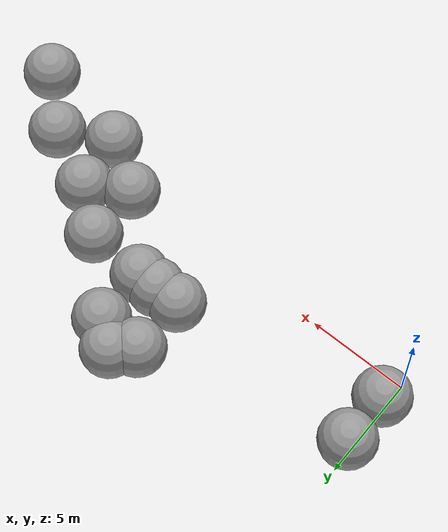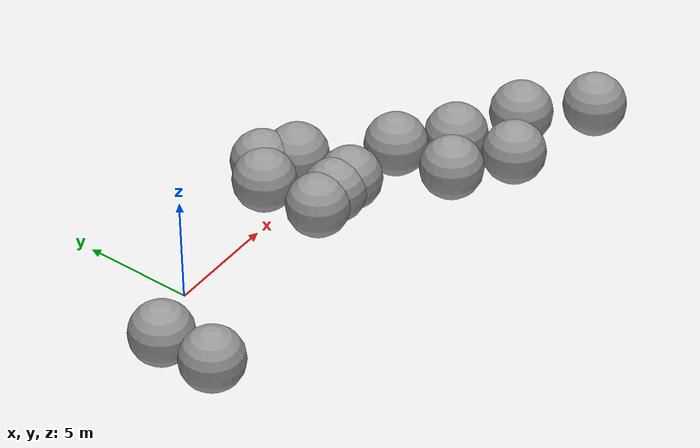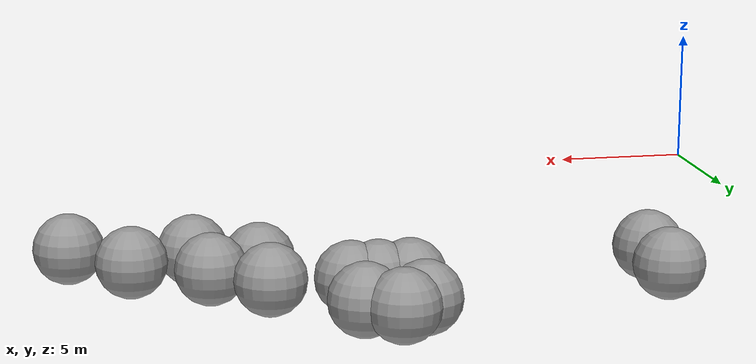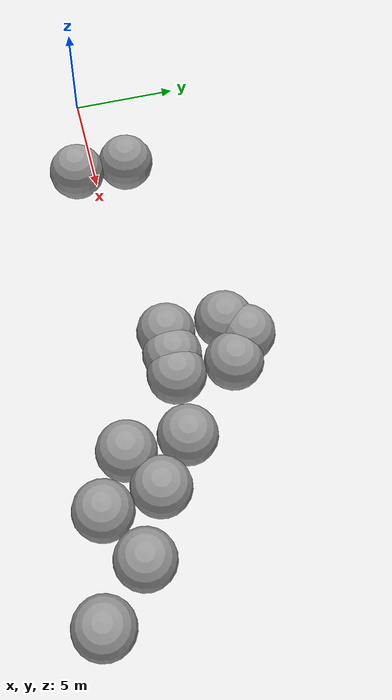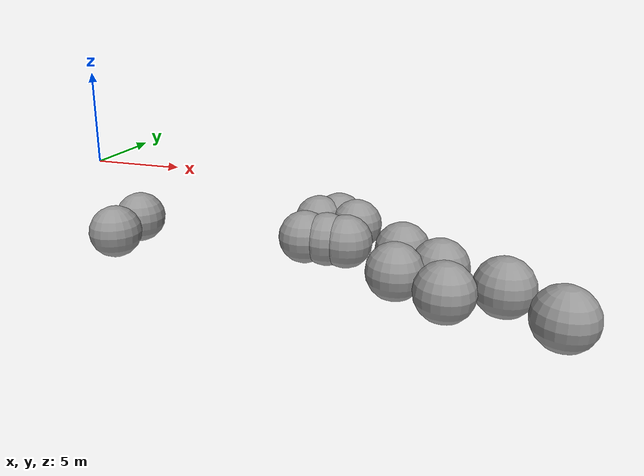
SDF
<sdf version="1.7">
 <world name="default">
  <model name="fly_spawn_12">
   <link name="link_0">
    <inertial>
     <mass>1</mass>
     <inertia><ixx>0.1</ixx><ixy>0</ixy><ixz>0</ixz><iyy>0.1</iyy><iyz>0</iyz><izz>0.1</izz></inertia>
     <pose>0 0 -2.0 0 -0 0</pose>
    </inertial>
    <visual name="visual">
     <pose>0 0 -2.0 0 -0 0</pose>
     <geometry><sphere><radius>1.5</radius></sphere></geometry>
     <material>
      <lighting>1</lighting>
      <script><uri>file://media/materials/scripts/gazebo.material</uri><name>Gazebo/Grey</name></script>
      <shader type="pixel"><normal_map>__default__</normal_map></shader>
      <ambient>0.3 0.3 0.3 1</ambient>
      <diffuse>0.7 0.7 0.7 1</diffuse>
      <specular>0.01 0.01 0.01 1</specular>
      <emissive>0 0 0 1</emissive>
     </material>
    </visual>
    <collision name="collision">
     <pose>0 0 -2.0 0 -0 0</pose>
     <geometry><sphere><radius>1.5</radius></sphere></geometry>
     <surface>
      <friction>
       <ode><mu>1</mu><mu2>1</mu2><fdir1>0 0 0</fdir1><slip1>0</slip1><slip2>0</slip2></ode>
       <torsional>
        <coefficient>1</coefficient>
        <patch_radius>0</patch_radius>
        <surface_radius>0</surface_radius>
        <use_patch_radius>1</use_patch_radius>
        <ode><slip>0</slip></ode>
       </torsional>
      </friction>
      <bounce><restitution_coefficient>0</restitution_coefficient><threshold>1e+06</threshold></bounce>
      <contact>
       <collide_without_contact>0</collide_without_contact>
       <collide_without_contact_bitmask>1</collide_without_contact_bitmask>
       <collide_bitmask>1</collide_bitmask>
       <ode>
        <soft_cfm>0</soft_cfm>
        <soft_erp>0.2</soft_erp>
        <kp>1e+13</kp>
        <kd>1</kd>
        <max_vel>0.01</max_vel>
        <min_depth>0</min_depth>
       </ode>
       <bullet>
        <split_impulse>1</split_impulse>
        <split_impulse_penetration_threshold>-0.01</split_impulse_penetration_threshold>
        <soft_cfm>0</soft_cfm>
        <soft_erp>0.2</soft_erp>
        <kp>1e+13</kp>
        <kd>1</kd>
       </bullet>
      </contact>
     </surface>
    </collision>
   </link>
   <static>1</static>
   <pose>0.988309 2.21728 -2.0 0 -0 0</pose>
  </model>
  <model name="fly_spawn_13">
   <link name="link_0">
    <inertial>
     <mass>1</mass>
     <inertia><ixx>0.1</ixx><ixy>0</ixy><ixz>0</ixz><iyy>0.1</iyy><iyz>0</iyz><izz>0.1</izz></inertia>
     <pose>0 0 -2.0 0 -0 0</pose>
    </inertial>
    <visual name="visual">
     <pose>0 0 -2.0 0 -0 0</pose>
     <geometry><sphere><radius>1.5</radius></sphere></geometry>
     <material>
      <lighting>1</lighting>
      <script><uri>file://media/materials/scripts/gazebo.material</uri><name>Gazebo/Grey</name></script>
      <shader type="pixel"><normal_map>__default__</normal_map></shader>
      <ambient>0.3 0.3 0.3 1</ambient>
      <diffuse>0.7 0.7 0.7 1</diffuse>
      <specular>0.01 0.01 0.01 1</specular>
      <emissive>0 0 0 1</emissive>
     </material>
    </visual>
    <collision name="collision">
     <pose>0 0 -2.0 0 -0 0</pose>
     <geometry><sphere><radius>1.5</radius></sphere></geometry>
     <surface>
      <friction>
       <ode><mu>1</mu><mu2>1</mu2><fdir1>0 0 0</fdir1><slip1>0</slip1><slip2>0</slip2></ode>
       <torsional>
        <coefficient>1</coefficient>
        <patch_radius>0</patch_radius>
        <surface_radius>0</surface_radius>
        <use_patch_radius>1</use_patch_radius>
        <ode><slip>0</slip></ode>
       </torsional>
      </friction>
      <bounce><restitution_coefficient>0</restitution_coefficient><threshold>1e+06</threshold></bounce>
      <contact>
       <collide_without_contact>0</collide_without_contact>
       <collide_without_contact_bitmask>1</collide_without_contact_bitmask>
       <collide_bitmask>1</collide_bitmask>
       <ode>
        <soft_cfm>0</soft_cfm>
        <soft_erp>0.2</soft_erp>
        <kp>1e+13</kp>
        <kd>1</kd>
        <max_vel>0.01</max_vel>
        <min_depth>0</min_depth>
       </ode>
       <bullet>
        <split_impulse>1</split_impulse>
        <split_impulse_penetration_threshold>-0.01</split_impulse_penetration_threshold>
        <soft_cfm>0</soft_cfm>
        <soft_erp>0.2</soft_erp>
        <kp>1e+13</kp>
        <kd>1</kd>
       </bullet>
      </contact>
     </surface>
    </collision>
   </link>
   <static>1</static>
   <pose>1.00035 -0.534143 -2.0 0 -0 0</pose>
  </model>
  <model name="fly_spawn_14">
   <link name="link_0">
    <inertial>
     <mass>1</mass>
     <inertia><ixx>0.1</ixx><ixy>0</ixy><ixz>0</ixz><iyy>0.1</iyy><iyz>0</iyz><izz>0.1</izz></inertia>
     <pose>0 0 -2.0 0 -0 0</pose>
    </inertial>
    <visual name="visual">
     <pose>0 0 -2.0 0 -0 0</pose>
     <geometry><sphere><radius>1.5</radius></sphere></geometry>
     <material>
      <lighting>1</lighting>
      <script><uri>file://media/materials/scripts/gazebo.material</uri><name>Gazebo/Grey</name></script>
      <shader type="pixel"><normal_map>__default__</normal_map></shader>
      <ambient>0.3 0.3 0.3 1</ambient>
      <diffuse>0.7 0.7 0.7 1</diffuse>
      <specular>0.01 0.01 0.01 1</specular>
      <emissive>0 0 0 1</emissive>
     </material>
    </visual>
    <collision name="collision">
     <pose>0 0 -2.0 0 -0 0</pose>
     <geometry><sphere><radius>1.5</radius></sphere></geometry>
     <surface>
      <friction>
       <ode><mu>1</mu><mu2>1</mu2><fdir1>0 0 0</fdir1><slip1>0</slip1><slip2>0</slip2></ode>
       <torsional>
        <coefficient>1</coefficient>
        <patch_radius>0</patch_radius>
        <surface_radius>0</surface_radius>
        <use_patch_radius>1</use_patch_radius>
        <ode><slip>0</slip></ode>
       </torsional>
      </friction>
      <bounce><restitution_coefficient>0</restitution_coefficient><threshold>1e+06</threshold></bounce>
      <contact>
       <collide_without_contact>0</collide_without_contact>
       <collide_without_contact_bitmask>1</collide_without_contact_bitmask>
       <collide_bitmask>1</collide_bitmask>
       <ode>
        <soft_cfm>0</soft_cfm>
        <soft_erp>0.2</soft_erp>
        <kp>1e+13</kp>
        <kd>1</kd>
        <max_vel>0.01</max_vel>
        <min_depth>0</min_depth>
       </ode>
       <bullet>
        <split_impulse>1</split_impulse>
        <split_impulse_penetration_threshold>-0.01</split_impulse_penetration_threshold>
        <soft_cfm>0</soft_cfm>
        <soft_erp>0.2</soft_erp>
        <kp>1e+13</kp>
        <kd>1</kd>
       </bullet>
      </contact>
     </surface>
    </collision>
   </link>
   <static>1</static>
   <pose>11.7613 1.94217 -2.0 0 -0 0</pose>
  </model>
  <model name="fly_spawn_15">
   <link name="link_0">
    <inertial>
     <mass>1</mass>
     <inertia><ixx>0.1</ixx><ixy>0</ixy><ixz>0</ixz><iyy>0.1</iyy><iyz>0</iyz><izz>0.1</izz></inertia>
     <pose>0 0 -2.0 0 -0 0</pose>
    </inertial>
    <visual name="visual">
     <pose>0 0 -2.0 0 -0 0</pose>
     <geometry><sphere><radius>1.5</radius></sphere></geometry>
     <material>
      <lighting>1</lighting>
      <script><uri>file://media/materials/scripts/gazebo.material</uri><name>Gazebo/Grey</name></script>
      <shader type="pixel"><normal_map>__default__</normal_map></shader>
      <ambient>0.3 0.3 0.3 1</ambient>
      <diffuse>0.7 0.7 0.7 1</diffuse>
      <specular>0.01 0.01 0.01 1</specular>
      <emissive>0 0 0 1</emissive>
     </material>
    </visual>
    <collision name="collision">
     <pose>0 0 -2.0 0 -0 0</pose>
     <geometry><sphere><radius>1.5</radius></sphere></geometry>
     <surface>
      <friction>
       <ode><mu>1</mu><mu2>1</mu2><fdir1>0 0 0</fdir1><slip1>0</slip1><slip2>0</slip2></ode>
       <torsional>
        <coefficient>1</coefficient>
        <patch_radius>0</patch_radius>
        <surface_radius>0</surface_radius>
        <use_patch_radius>1</use_patch_radius>
        <ode><slip>0</slip></ode>
       </torsional>
      </friction>
      <bounce><restitution_coefficient>0</restitution_coefficient><threshold>1e+06</threshold></bounce>
      <contact>
       <collide_without_contact>0</collide_without_contact>
       <collide_without_contact_bitmask>1</collide_without_contact_bitmask>
       <collide_bitmask>1</collide_bitmask>
       <ode>
        <soft_cfm>0</soft_cfm>
        <soft_erp>0.2</soft_erp>
        <kp>1e+13</kp>
        <kd>1</kd>
        <max_vel>0.01</max_vel>
        <min_depth>0</min_depth>
       </ode>
       <bullet>
        <split_impulse>1</split_impulse>
        <split_impulse_penetration_threshold>-0.01</split_impulse_penetration_threshold>
        <soft_cfm>0</soft_cfm>
        <soft_erp>0.2</soft_erp>
        <kp>1e+13</kp>
        <kd>1</kd>
       </bullet>
      </contact>
     </surface>
    </collision>
   </link>
   <static>1</static>
   <pose>11.7411 4.97433 -2.0 0 -0 0</pose>
  </model>
  <model name="fly_spawn_16">
   <link name="link_0">
    <inertial>
     <mass>1</mass>
     <inertia><ixx>0.1</ixx><ixy>0</ixy><ixz>0</ixz><iyy>0.1</iyy><iyz>0</iyz><izz>0.1</izz></inertia>
     <pose>0 0 -2.0 0 -0 0</pose>
    </inertial>
    <visual name="visual">
     <pose>0 0 -2.0 0 -0 0</pose>
     <geometry><sphere><radius>1.5</radius></sphere></geometry>
     <material>
      <lighting>1</lighting>
      <script><uri>file://media/materials/scripts/gazebo.material</uri><name>Gazebo/Grey</name></script>
      <shader type="pixel"><normal_map>__default__</normal_map></shader>
      <ambient>0.3 0.3 0.3 1</ambient>
      <diffuse>0.7 0.7 0.7 1</diffuse>
      <specular>0.01 0.01 0.01 1</specular>
      <emissive>0 0 0 1</emissive>
     </material>
    </visual>
    <collision name="collision">
     <pose>0 0 -2.0 0 -0 0</pose>
     <geometry><sphere><radius>1.5</radius></sphere></geometry>
     <surface>
      <friction>
       <ode><mu>1</mu><mu2>1</mu2><fdir1>0 0 0</fdir1><slip1>0</slip1><slip2>0</slip2></ode>
       <torsional>
        <coefficient>1</coefficient>
        <patch_radius>0</patch_radius>
        <surface_radius>0</surface_radius>
        <use_patch_radius>1</use_patch_radius>
        <ode><slip>0</slip></ode>
       </torsional>
      </friction>
      <bounce><restitution_coefficient>0</restitution_coefficient><threshold>1e+06</threshold></bounce>
      <contact>
       <collide_without_contact>0</collide_without_contact>
       <collide_without_contact_bitmask>1</collide_without_contact_bitmask>
       <collide_bitmask>1</collide_bitmask>
       <ode>
        <soft_cfm>0</soft_cfm>
        <soft_erp>0.2</soft_erp>
        <kp>1e+13</kp>
        <kd>1</kd>
        <max_vel>0.01</max_vel>
        <min_depth>0</min_depth>
       </ode>
       <bullet>
        <split_impulse>1</split_impulse>
        <split_impulse_penetration_threshold>-0.01</split_impulse_penetration_threshold>
        <soft_cfm>0</soft_cfm>
        <soft_erp>0.2</soft_erp>
        <kp>1e+13</kp>
        <kd>1</kd>
       </bullet>
      </contact>
     </surface>
    </collision>
   </link>
   <static>1</static>
   <pose>14.1573 1.92312 -2.0 0 -0 0</pose>
  </model>
  <model name="fly_spawn_17">
   <link name="link_0">
    <inertial>
     <mass>1</mass>
     <inertia><ixx>0.1</ixx><ixy>0</ixy><ixz>0</ixz><iyy>0.1</iyy><iyz>0</iyz><izz>0.1</izz></inertia>
     <pose>0 0 -2.0 0 -0 0</pose>
    </inertial>
    <visual name="visual">
     <pose>0 0 -2.0 0 -0 0</pose>
     <geometry><sphere><radius>1.5</radius></sphere></geometry>
     <material>
      <lighting>1</lighting>
      <script><uri>file://media/materials/scripts/gazebo.material</uri><name>Gazebo/Grey</name></script>
      <shader type="pixel"><normal_map>__default__</normal_map></shader>
      <ambient>0.3 0.3 0.3 1</ambient>
      <diffuse>0.7 0.7 0.7 1</diffuse>
      <specular>0.01 0.01 0.01 1</specular>
      <emissive>0 0 0 1</emissive>
     </material>
    </visual>
    <collision name="collision">
     <pose>0 0 -2.0 0 -0 0</pose>
     <geometry><sphere><radius>1.5</radius></sphere></geometry>
     <surface>
      <friction>
       <ode><mu>1</mu><mu2>1</mu2><fdir1>0 0 0</fdir1><slip1>0</slip1><slip2>0</slip2></ode>
       <torsional>
        <coefficient>1</coefficient>
        <patch_radius>0</patch_radius>
        <surface_radius>0</surface_radius>
        <use_patch_radius>1</use_patch_radius>
        <ode><slip>0</slip></ode>
       </torsional>
      </friction>
      <bounce><restitution_coefficient>0</restitution_coefficient><threshold>1e+06</threshold></bounce>
      <contact>
       <collide_without_contact>0</collide_without_contact>
       <collide_without_contact_bitmask>1</collide_without_contact_bitmask>
       <collide_bitmask>1</collide_bitmask>
       <ode>
        <soft_cfm>0</soft_cfm>
        <soft_erp>0.2</soft_erp>
        <kp>1e+13</kp>
        <kd>1</kd>
        <max_vel>0.01</max_vel>
        <min_depth>0</min_depth>
       </ode>
       <bullet>
        <split_impulse>1</split_impulse>
        <split_impulse_penetration_threshold>-0.01</split_impulse_penetration_threshold>
        <soft_cfm>0</soft_cfm>
        <soft_erp>0.2</soft_erp>
        <kp>1e+13</kp>
        <kd>1</kd>
       </bullet>
      </contact>
     </surface>
    </collision>
   </link>
   <static>1</static>
   <pose>13.0553 1.95854 -2.0 0 -0 0</pose>
  </model>
  <model name="fly_spawn_18">
   <link name="link_0">
    <inertial>
     <mass>1</mass>
     <inertia><ixx>0.1</ixx><ixy>0</ixy><ixz>0</ixz><iyy>0.1</iyy><iyz>0</iyz><izz>0.1</izz></inertia>
     <pose>0 0 -2.0 0 -0 0</pose>
    </inertial>
    <visual name="visual">
     <pose>0 0 -2.0 0 -0 0</pose>
     <geometry><sphere><radius>1.5</radius></sphere></geometry>
     <material>
      <lighting>1</lighting>
      <script><uri>file://media/materials/scripts/gazebo.material</uri><name>Gazebo/Grey</name></script>
      <shader type="pixel"><normal_map>__default__</normal_map></shader>
      <ambient>0.3 0.3 0.3 1</ambient>
      <diffuse>0.7 0.7 0.7 1</diffuse>
      <specular>0.01 0.01 0.01 1</specular>
      <emissive>0 0 0 1</emissive>
     </material>
    </visual>
    <collision name="collision">
     <pose>0 0 -2.0 0 -0 0</pose>
     <geometry><sphere><radius>1.5</radius></sphere></geometry>
     <surface>
      <friction>
       <ode><mu>1</mu><mu2>1</mu2><fdir1>0 0 0</fdir1><slip1>0</slip1><slip2>0</slip2></ode>
       <torsional>
        <coefficient>1</coefficient>
        <patch_radius>0</patch_radius>
        <surface_radius>0</surface_radius>
        <use_patch_radius>1</use_patch_radius>
        <ode><slip>0</slip></ode>
       </torsional>
      </friction>
      <bounce><restitution_coefficient>0</restitution_coefficient><threshold>1e+06</threshold></bounce>
      <contact>
       <collide_without_contact>0</collide_without_contact>
       <collide_without_contact_bitmask>1</collide_without_contact_bitmask>
       <collide_bitmask>1</collide_bitmask>
       <ode>
        <soft_cfm>0</soft_cfm>
        <soft_erp>0.2</soft_erp>
        <kp>1e+13</kp>
        <kd>1</kd>
        <max_vel>0.01</max_vel>
        <min_depth>0</min_depth>
       </ode>
       <bullet>
        <split_impulse>1</split_impulse>
        <split_impulse_penetration_threshold>-0.01</split_impulse_penetration_threshold>
        <soft_cfm>0</soft_cfm>
        <soft_erp>0.2</soft_erp>
        <kp>1e+13</kp>
        <kd>1</kd>
       </bullet>
      </contact>
     </surface>
    </collision>
   </link>
   <static>1</static>
   <pose>12.7493 5.86521 -2.0 0 -0 0</pose>
  </model>
  <model name="fly_spawn_19">
   <link name="link_0">
    <inertial>
     <mass>1</mass>
     <inertia><ixx>0.1</ixx><ixy>0</ixy><ixz>0</ixz><iyy>0.1</iyy><iyz>0</iyz><izz>0.1</izz></inertia>
     <pose>0 0 -2.0 0 -0 0</pose>
    </inertial>
    <visual name="visual">
     <pose>0 0 -2.0 0 -0 0</pose>
     <geometry><sphere><radius>1.5</radius></sphere></geometry>
     <material>
      <lighting>1</lighting>
      <script><uri>file://media/materials/scripts/gazebo.material</uri><name>Gazebo/Grey</name></script>
      <shader type="pixel"><normal_map>__default__</normal_map></shader>
      <ambient>0.3 0.3 0.3 1</ambient>
      <diffuse>0.7 0.7 0.7 1</diffuse>
      <specular>0.01 0.01 0.01 1</specular>
      <emissive>0 0 0 1</emissive>
     </material>
    </visual>
    <collision name="collision">
     <pose>0 0 -2.0 0 -0 0</pose>
     <geometry><sphere><radius>1.5</radius></sphere></geometry>
     <surface>
      <friction>
       <ode><mu>1</mu><mu2>1</mu2><fdir1>0 0 0</fdir1><slip1>0</slip1><slip2>0</slip2></ode>
       <torsional>
        <coefficient>1</coefficient>
        <patch_radius>0</patch_radius>
        <surface_radius>0</surface_radius>
        <use_patch_radius>1</use_patch_radius>
        <ode><slip>0</slip></ode>
       </torsional>
      </friction>
      <bounce><restitution_coefficient>0</restitution_coefficient><threshold>1e+06</threshold></bounce>
      <contact>
       <collide_without_contact>0</collide_without_contact>
       <collide_without_contact_bitmask>1</collide_without_contact_bitmask>
       <collide_bitmask>1</collide_bitmask>
       <ode>
        <soft_cfm>0</soft_cfm>
        <soft_erp>0.2</soft_erp>
        <kp>1e+13</kp>
        <kd>1</kd>
        <max_vel>0.01</max_vel>
        <min_depth>0</min_depth>
       </ode>
       <bullet>
        <split_impulse>1</split_impulse>
        <split_impulse_penetration_threshold>-0.01</split_impulse_penetration_threshold>
        <soft_cfm>0</soft_cfm>
        <soft_erp>0.2</soft_erp>
        <kp>1e+13</kp>
        <kd>1</kd>
       </bullet>
      </contact>
     </surface>
    </collision>
   </link>
   <static>1</static>
   <pose>14.0852 4.88351 -2.0 0 -0 0</pose>
  </model>
  <model name="fly_spawn_20">
   <link name="link_0">
    <inertial>
     <mass>1</mass>
     <inertia><ixx>0.1</ixx><ixy>0</ixy><ixz>0</ixz><iyy>0.1</iyy><iyz>0</iyz><izz>0.1</izz></inertia>
     <pose>0 0 -2.0 0 -0 0</pose>
    </inertial>
    <visual name="visual">
     <pose>0 0 -2.0 0 -0 0</pose>
     <geometry><sphere><radius>1.5</radius></sphere></geometry>
     <material>
      <lighting>1</lighting>
      <script><uri>file://media/materials/scripts/gazebo.material</uri><name>Gazebo/Grey</name></script>
      <shader type="pixel"><normal_map>__default__</normal_map></shader>
      <ambient>0.3 0.3 0.3 1</ambient>
      <diffuse>0.7 0.7 0.7 1</diffuse>
      <specular>0.01 0.01 0.01 1</specular>
      <emissive>0 0 0 1</emissive>
     </material>
    </visual>
    <collision name="collision">
     <pose>0 0 -2.0 0 -0 0</pose>
     <geometry><sphere><radius>1.5</radius></sphere></geometry>
     <surface>
      <friction>
       <ode><mu>1</mu><mu2>1</mu2><fdir1>0 0 0</fdir1><slip1>0</slip1><slip2>0</slip2></ode>
       <torsional>
        <coefficient>1</coefficient>
        <patch_radius>0</patch_radius>
        <surface_radius>0</surface_radius>
        <use_patch_radius>1</use_patch_radius>
        <ode><slip>0</slip></ode>
       </torsional>
      </friction>
      <bounce><restitution_coefficient>0</restitution_coefficient><threshold>1e+06</threshold></bounce>
      <contact>
       <collide_without_contact>0</collide_without_contact>
       <collide_without_contact_bitmask>1</collide_without_contact_bitmask>
       <collide_bitmask>1</collide_bitmask>
       <ode>
        <soft_cfm>0</soft_cfm>
        <soft_erp>0.2</soft_erp>
        <kp>1e+13</kp>
        <kd>1</kd>
        <max_vel>0.01</max_vel>
        <min_depth>0</min_depth>
       </ode>
       <bullet>
        <split_impulse>1</split_impulse>
        <split_impulse_penetration_threshold>-0.01</split_impulse_penetration_threshold>
        <soft_cfm>0</soft_cfm>
        <soft_erp>0.2</soft_erp>
        <kp>1e+13</kp>
        <kd>1</kd>
       </bullet>
      </contact>
     </surface>
    </collision>
   </link>
   <static>1</static>
   <pose>17.482 -1.35226 -2.0 0 -0 0</pose>
  </model>
  <model name="fly_spawn_21">
   <link name="link_0">
    <inertial>
     <mass>1</mass>
     <inertia><ixx>0.1</ixx><ixy>0</ixy><ixz>0</ixz><iyy>0.1</iyy><iyz>0</iyz><izz>0.1</izz></inertia>
     <pose>0 0 -2.0 0 -0 0</pose>
    </inertial>
    <visual name="visual">
     <pose>0 0 -2.0 0 -0 0</pose>
     <geometry><sphere><radius>1.5</radius></sphere></geometry>
     <material>
      <lighting>1</lighting>
      <script><uri>file://media/materials/scripts/gazebo.material</uri><name>Gazebo/Grey</name></script>
      <shader type="pixel"><normal_map>__default__</normal_map></shader>
      <ambient>0.3 0.3 0.3 1</ambient>
      <diffuse>0.7 0.7 0.7 1</diffuse>
      <specular>0.01 0.01 0.01 1</specular>
      <emissive>0 0 0 1</emissive>
     </material>
    </visual>
    <collision name="collision">
     <pose>0 0 -2.0 0 -0 0</pose>
     <geometry><sphere><radius>1.5</radius></sphere></geometry>
     <surface>
      <friction>
       <ode><mu>1</mu><mu2>1</mu2><fdir1>0 0 0</fdir1><slip1>0</slip1><slip2>0</slip2></ode>
       <torsional>
        <coefficient>1</coefficient>
        <patch_radius>0</patch_radius>
        <surface_radius>0</surface_radius>
        <use_patch_radius>1</use_patch_radius>
        <ode><slip>0</slip></ode>
       </torsional>
      </friction>
      <bounce><restitution_coefficient>0</restitution_coefficient><threshold>1e+06</threshold></bounce>
      <contact>
       <collide_without_contact>0</collide_without_contact>
       <collide_without_contact_bitmask>1</collide_without_contact_bitmask>
       <collide_bitmask>1</collide_bitmask>
       <ode>
        <soft_cfm>0</soft_cfm>
        <soft_erp>0.2</soft_erp>
        <kp>1e+13</kp>
        <kd>1</kd>
        <max_vel>0.01</max_vel>
        <min_depth>0</min_depth>
       </ode>
       <bullet>
        <split_impulse>1</split_impulse>
        <split_impulse_penetration_threshold>-0.01</split_impulse_penetration_threshold>
        <soft_cfm>0</soft_cfm>
        <soft_erp>0.2</soft_erp>
        <kp>1e+13</kp>
        <kd>1</kd>
       </bullet>
      </contact>
     </surface>
    </collision>
   </link>
   <static>1</static>
   <pose>17.3623 1.68734 -2.0 0 -0 0</pose>
  </model>
  <model name="fly_spawn_22">
   <link name="link_0">
    <inertial>
     <mass>1</mass>
     <inertia><ixx>0.1</ixx><ixy>0</ixy><ixz>0</ixz><iyy>0.1</iyy><iyz>0</iyz><izz>0.1</izz></inertia>
     <pose>0 0 -2.0 0 -0 0</pose>
    </inertial>
    <visual name="visual">
     <pose>0 0 -2.0 0 -0 0</pose>
     <geometry><sphere><radius>1.5</radius></sphere></geometry>
     <material>
      <lighting>1</lighting>
      <script><uri>file://media/materials/scripts/gazebo.material</uri><name>Gazebo/Grey</name></script>
      <shader type="pixel"><normal_map>__default__</normal_map></shader>
      <ambient>0.3 0.3 0.3 1</ambient>
      <diffuse>0.7 0.7 0.7 1</diffuse>
      <specular>0.01 0.01 0.01 1</specular>
      <emissive>0 0 0 1</emissive>
     </material>
    </visual>
    <collision name="collision">
     <pose>0 0 -2.0 0 -0 0</pose>
     <geometry><sphere><radius>1.5</radius></sphere></geometry>
     <surface>
      <friction>
       <ode><mu>1</mu><mu2>1</mu2><fdir1>0 0 0</fdir1><slip1>0</slip1><slip2>0</slip2></ode>
       <torsional>
        <coefficient>1</coefficient>
        <patch_radius>0</patch_radius>
        <surface_radius>0</surface_radius>
        <use_patch_radius>1</use_patch_radius>
        <ode><slip>0</slip></ode>
       </torsional>
      </friction>
      <bounce><restitution_coefficient>0</restitution_coefficient><threshold>1e+06</threshold></bounce>
      <contact>
       <collide_without_contact>0</collide_without_contact>
       <collide_without_contact_bitmask>1</collide_without_contact_bitmask>
       <collide_bitmask>1</collide_bitmask>
       <ode>
        <soft_cfm>0</soft_cfm>
        <soft_erp>0.2</soft_erp>
        <kp>1e+13</kp>
        <kd>1</kd>
        <max_vel>0.01</max_vel>
        <min_depth>0</min_depth>
       </ode>
       <bullet>
        <split_impulse>1</split_impulse>
        <split_impulse_penetration_threshold>-0.01</split_impulse_penetration_threshold>
        <soft_cfm>0</soft_cfm>
        <soft_erp>0.2</soft_erp>
        <kp>1e+13</kp>
        <kd>1</kd>
       </bullet>
      </contact>
     </surface>
    </collision>
   </link>
   <static>1</static>
   <pose>20.0818 -3.01549 -2.0 0 -0 0</pose>
  </model>
  <model name="fly_spawn_23">
   <link name="link_0">
    <inertial>
     <mass>1</mass>
     <inertia><ixx>0.1</ixx><ixy>0</ixy><ixz>0</ixz><iyy>0.1</iyy><iyz>0</iyz><izz>0.1</izz></inertia>
     <pose>0 0 -2.0 0 -0 0</pose>
    </inertial>
    <visual name="visual">
     <pose>0 0 -2.0 0 -0 0</pose>
     <geometry><sphere><radius>1.5</radius></sphere></geometry>
     <material>
      <lighting>1</lighting>
      <script><uri>file://media/materials/scripts/gazebo.material</uri><name>Gazebo/Grey</name></script>
      <shader type="pixel"><normal_map>__default__</normal_map></shader>
      <ambient>0.3 0.3 0.3 1</ambient>
      <diffuse>0.7 0.7 0.7 1</diffuse>
      <specular>0.01 0.01 0.01 1</specular>
      <emissive>0 0 0 1</emissive>
     </material>
    </visual>
    <collision name="collision">
     <pose>0 0 -2.0 0 -0 0</pose>
     <geometry><sphere><radius>1.5</radius></sphere></geometry>
     <surface>
      <friction>
       <ode><mu>1</mu><mu2>1</mu2><fdir1>0 0 0</fdir1><slip1>0</slip1><slip2>0</slip2></ode>
       <torsional>
        <coefficient>1</coefficient>
        <patch_radius>0</patch_radius>
        <surface_radius>0</surface_radius>
        <use_patch_radius>1</use_patch_radius>
        <ode><slip>0</slip></ode>
       </torsional>
      </friction>
      <bounce><restitution_coefficient>0</restitution_coefficient><threshold>1e+06</threshold></bounce>
      <contact>
       <collide_without_contact>0</collide_without_contact>
       <collide_without_contact_bitmask>1</collide_without_contact_bitmask>
       <collide_bitmask>1</collide_bitmask>
       <ode>
        <soft_cfm>0</soft_cfm>
        <soft_erp>0.2</soft_erp>
        <kp>1e+13</kp>
        <kd>1</kd>
        <max_vel>0.01</max_vel>
        <min_depth>0</min_depth>
       </ode>
       <bullet>
        <split_impulse>1</split_impulse>
        <split_impulse_penetration_threshold>-0.01</split_impulse_penetration_threshold>
        <soft_cfm>0</soft_cfm>
        <soft_erp>0.2</soft_erp>
        <kp>1e+13</kp>
        <kd>1</kd>
       </bullet>
      </contact>
     </surface>
    </collision>
   </link>
   <static>1</static>
   <pose>19.5773 -0.134794 -2.0 0 -0 0</pose>
  </model>
  <model name="fly_spawn_24">
   <link name="link_0">
    <inertial>
     <mass>1</mass>
     <inertia><ixx>0.1</ixx><ixy>0</ixy><ixz>0</ixz><iyy>0.1</iyy><iyz>0</iyz><izz>0.1</izz></inertia>
     <pose>0 0 -2.0 0 -0 0</pose>
    </inertial>
    <visual name="visual">
     <pose>0 0 -2.0 0 -0 0</pose>
     <geometry><sphere><radius>1.5</radius></sphere></geometry>
     <material>
      <lighting>1</lighting>
      <script><uri>file://media/materials/scripts/gazebo.material</uri><name>Gazebo/Grey</name></script>
      <shader type="pixel"><normal_map>__default__</normal_map></shader>
      <ambient>0.3 0.3 0.3 1</ambient>
      <diffuse>0.7 0.7 0.7 1</diffuse>
      <specular>0.01 0.01 0.01 1</specular>
      <emissive>0 0 0 1</emissive>
     </material>
    </visual>
    <collision name="collision">
     <pose>0 0 -2.0 0 -0 0</pose>
     <geometry><sphere><radius>1.5</radius></sphere></geometry>
     <surface>
      <friction>
       <ode><mu>1</mu><mu2>1</mu2><fdir1>0 0 0</fdir1><slip1>0</slip1><slip2>0</slip2></ode>
       <torsional>
        <coefficient>1</coefficient>
        <patch_radius>0</patch_radius>
        <surface_radius>0</surface_radius>
        <use_patch_radius>1</use_patch_radius>
        <ode><slip>0</slip></ode>
       </torsional>
      </friction>
      <bounce><restitution_coefficient>0</restitution_coefficient><threshold>1e+06</threshold></bounce>
      <contact>
       <collide_without_contact>0</collide_without_contact>
       <collide_without_contact_bitmask>1</collide_without_contact_bitmask>
       <collide_bitmask>1</collide_bitmask>
       <ode>
        <soft_cfm>0</soft_cfm>
        <soft_erp>0.2</soft_erp>
        <kp>1e+13</kp>
        <kd>1</kd>
        <max_vel>0.01</max_vel>
        <min_depth>0</min_depth>
       </ode>
       <bullet>
        <split_impulse>1</split_impulse>
        <split_impulse_penetration_threshold>-0.01</split_impulse_penetration_threshold>
        <soft_cfm>0</soft_cfm>
        <soft_erp>0.2</soft_erp>
        <kp>1e+13</kp>
        <kd>1</kd>
       </bullet>
      </contact>
     </surface>
    </collision>
   </link>
   <static>1</static>
   <pose>22.7135 -1.61505 -2.0 0 -0 0</pose>
  </model>
  <model name="fly_spawn_25">
   <link name="link_0">
    <inertial>
     <mass>1</mass>
     <inertia><ixx>0.1</ixx><ixy>0</ixy><ixz>0</ixz><iyy>0.1</iyy><iyz>0</iyz><izz>0.1</izz></inertia>
     <pose>0 0 -2.0 0 -0 0</pose>
    </inertial>
    <visual name="visual">
     <pose>0 0 -2.0 0 -0 0</pose>
     <geometry><sphere><radius>1.5</radius></sphere></geometry>
     <material>
      <lighting>1</lighting>
      <script><uri>file://media/materials/scripts/gazebo.material</uri><name>Gazebo/Grey</name></script>
      <shader type="pixel"><normal_map>__default__</normal_map></shader>
      <ambient>0.3 0.3 0.3 1</ambient>
      <diffuse>0.7 0.7 0.7 1</diffuse>
      <specular>0.01 0.01 0.01 1</specular>
      <emissive>0 0 0 1</emissive>
     </material>
    </visual>
    <collision name="collision">
     <pose>0 0 -2.0 0 -0 0</pose>
     <geometry><sphere><radius>1.5</radius></sphere></geometry>
     <surface>
      <friction>
       <ode><mu>1</mu><mu2>1</mu2><fdir1>0 0 0</fdir1><slip1>0</slip1><slip2>0</slip2></ode>
       <torsional>
        <coefficient>1</coefficient>
        <patch_radius>0</patch_radius>
        <surface_radius>0</surface_radius>
        <use_patch_radius>1</use_patch_radius>
        <ode><slip>0</slip></ode>
       </torsional>
      </friction>
      <bounce><restitution_coefficient>0</restitution_coefficient><threshold>1e+06</threshold></bounce>
      <contact>
       <collide_without_contact>0</collide_without_contact>
       <collide_without_contact_bitmask>1</collide_without_contact_bitmask>
       <collide_bitmask>1</collide_bitmask>
       <ode>
        <soft_cfm>0</soft_cfm>
        <soft_erp>0.2</soft_erp>
        <kp>1e+13</kp>
        <kd>1</kd>
        <max_vel>0.01</max_vel>
        <min_depth>0</min_depth>
       </ode>
       <bullet>
        <split_impulse>1</split_impulse>
        <split_impulse_penetration_threshold>-0.01</split_impulse_penetration_threshold>
        <soft_cfm>0</soft_cfm>
        <soft_erp>0.2</soft_erp>
        <kp>1e+13</kp>
        <kd>1</kd>
       </bullet>
      </contact>
     </surface>
    </collision>
   </link>
   <static>1</static>
   <pose>25.2205 -4.04266 -2.0 0 -0 0</pose>
  </model>
 </world>
</sdf>
